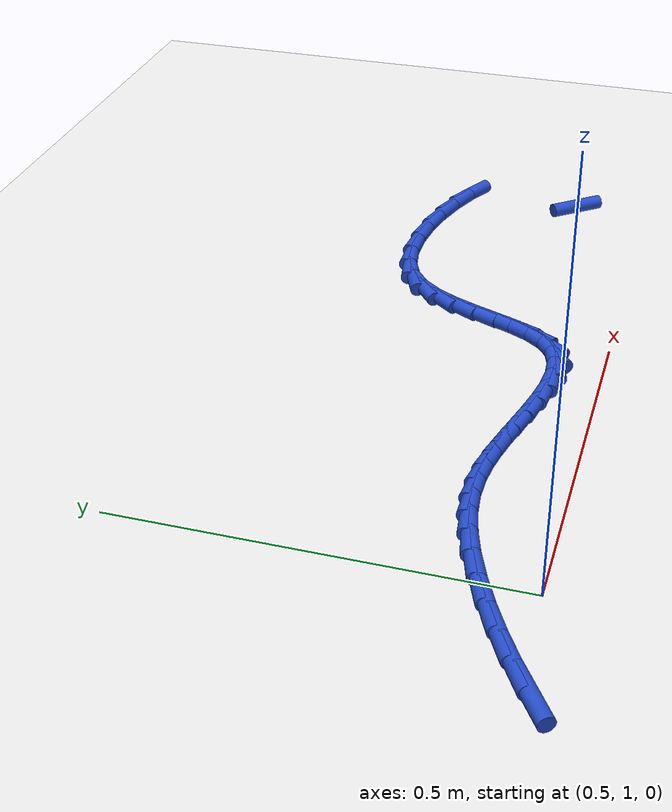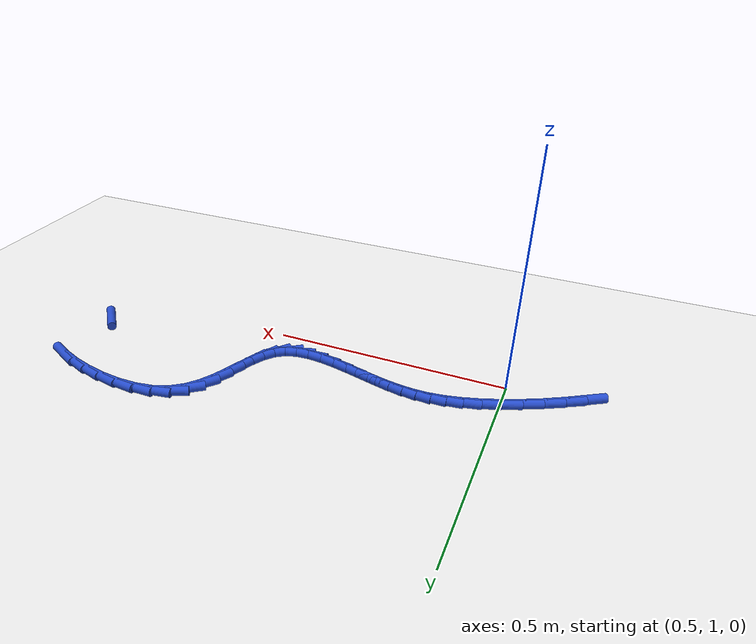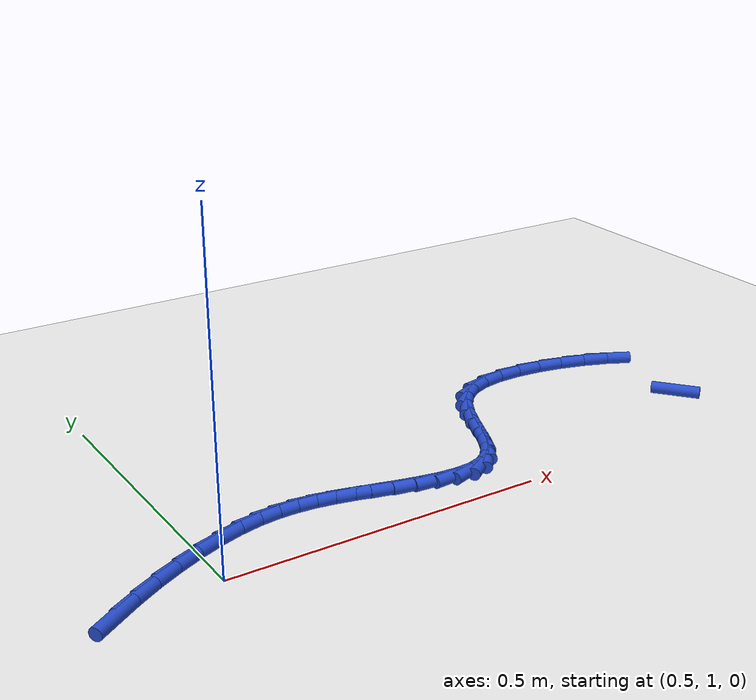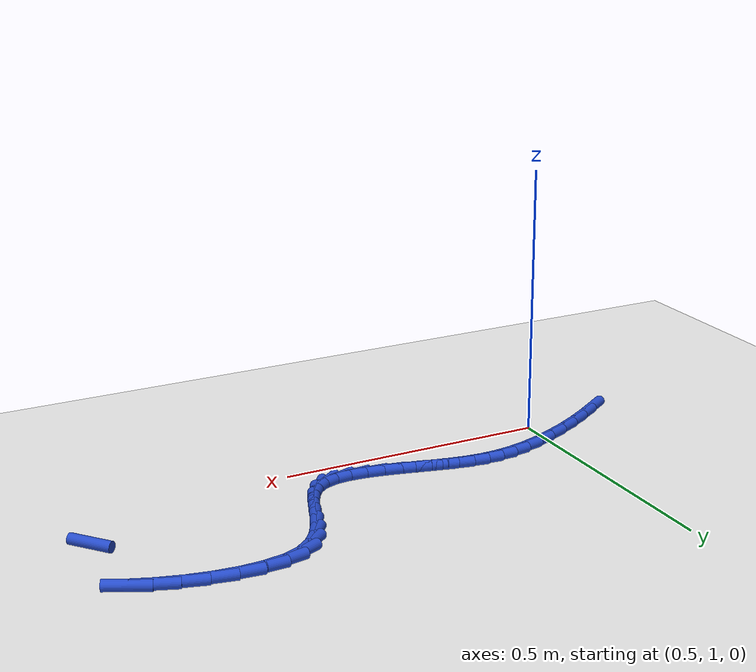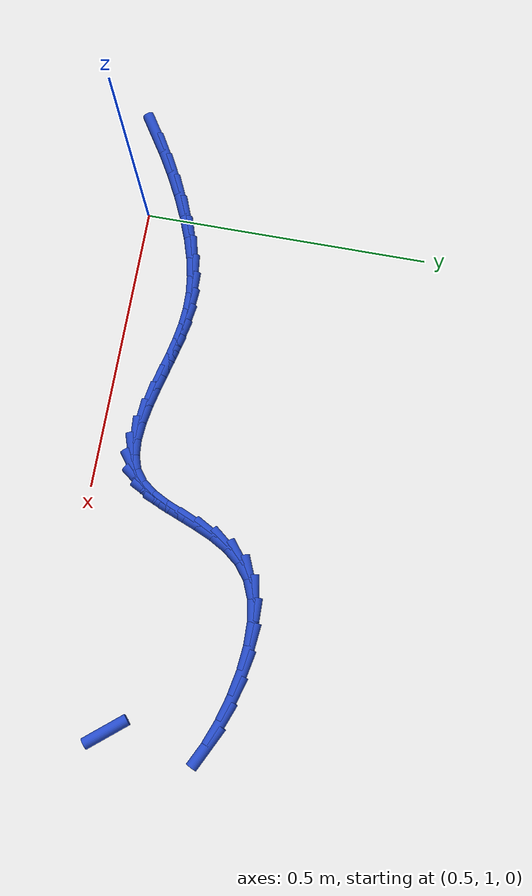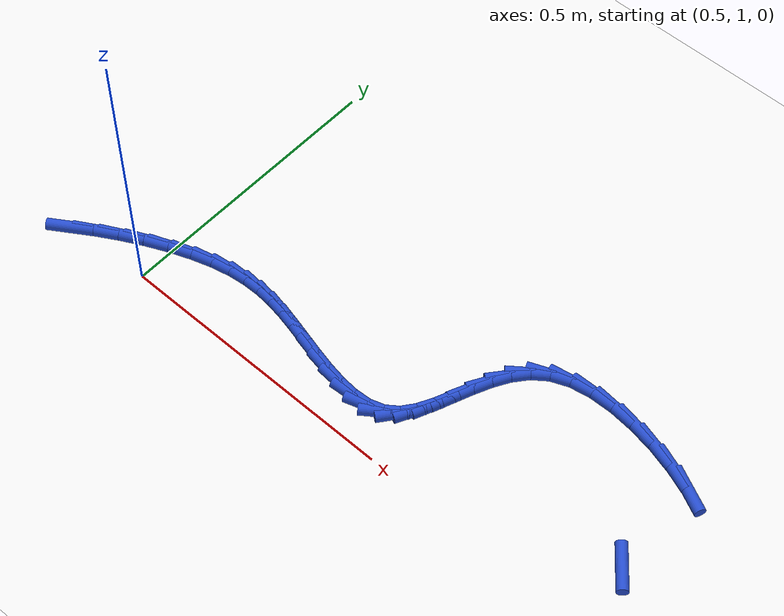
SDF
<sdf version="1.6">
 <world name="default">
  <model name="ground_plane">
   <static>1</static>
   <link name="link">
    <collision name="collision">
     <geometry><plane><normal>0 0 1</normal><size>100 100</size></plane></geometry>
     <surface><friction><ode><mu>100</mu><mu2>50</mu2></ode></friction></surface>
    </collision>
    <visual name="visual">
     <cast_shadows>0</cast_shadows>
     <geometry><plane><normal>0 0 1</normal><size>100 100</size></plane></geometry>
     <material>
      <script><uri>file://media/materials/scripts/gazebo.material</uri><name>Gazebo/WhiteGlow</name></script>
     </material>
    </visual>
   </link>
  </model>
  <model name="line">
   <link name="link_40">
    <pose>0.346780842815617 0.9847968200409205 0.01 0 1.57 0.5760384446696214</pose>
    <collision name="collision">
     <geometry><cylinder><radius>0.01</radius><length>0.08</length></cylinder></geometry>
    </collision>
    <visual name="visual">
     <material>
      <script><name>Gazebo/Blue</name><uri>file://media/materials/scripts/gazebo.material</uri></script>
     </material>
     <geometry><cylinder><radius>0.01</radius><length>0.08</length></cylinder></geometry>
    </visual>
   </link>
   <link name="link_41">
    <pose>0.3829566989174125 1.0082937997581067 0.01 0 1.57 0.529337563380191</pose>
    <collision name="collision">
     <geometry><cylinder><radius>0.01</radius><length>0.08</length></cylinder></geometry>
    </collision>
    <visual name="visual">
     <material>
      <script><name>Gazebo/Blue</name><uri>file://media/materials/scripts/gazebo.material</uri></script>
     </material>
     <geometry><cylinder><radius>0.01</radius><length>0.08</length></cylinder></geometry>
    </visual>
   </link>
   <link name="link_42">
    <pose>0.42037730424925923 1.0301858832220723 0.01 0 1.57 0.48162299784644824</pose>
    <collision name="collision">
     <geometry><cylinder><radius>0.01</radius><length>0.08</length></cylinder></geometry>
    </collision>
    <visual name="visual">
     <material>
      <script><name>Gazebo/Blue</name><uri>file://media/materials/scripts/gazebo.material</uri></script>
     </material>
     <geometry><cylinder><radius>0.01</radius><length>0.08</length></cylinder></geometry>
    </visual>
   </link>
   <link name="link_43">
    <pose>0.4583892657239844 1.0500538033799964 0.01 0 1.57 0.43043221737695614</pose>
    <collision name="collision">
     <geometry><cylinder><radius>0.01</radius><length>0.08</length></cylinder></geometry>
    </collision>
    <visual name="visual">
     <material>
      <script><name>Gazebo/Blue</name><uri>file://media/materials/scripts/gazebo.material</uri></script>
     </material>
     <geometry><cylinder><radius>0.01</radius><length>0.08</length></cylinder></geometry>
    </visual>
   </link>
   <link name="link_44">
    <pose>0.49633919025441575 1.0674782931790592 0.01 0 1.57 0.3727960911620906</pose>
    <collision name="collision">
     <geometry><cylinder><radius>0.01</radius><length>0.08</length></cylinder></geometry>
    </collision>
    <visual name="visual">
     <material>
      <script><name>Gazebo/Blue</name><uri>file://media/materials/scripts/gazebo.material</uri></script>
     </material>
     <geometry><cylinder><radius>0.01</radius><length>0.08</length></cylinder></geometry>
    </visual>
   </link>
   <link name="link_45">
    <pose>0.5335736847533803 1.0820400855664403 0.01 0 1.57 0.3047077780259162</pose>
    <collision name="collision">
     <geometry><cylinder><radius>0.01</radius><length>0.08</length></cylinder></geometry>
    </collision>
    <visual name="visual">
     <material>
      <script><name>Gazebo/Blue</name><uri>file://media/materials/scripts/gazebo.material</uri></script>
     </material>
     <geometry><cylinder><radius>0.01</radius><length>0.08</length></cylinder></geometry>
    </visual>
   </link>
   <link name="link_46">
    <pose>0.5694393561337056 1.0933199134893197 0.01 0 1.57 0.22032367388659238</pose>
    <collision name="collision">
     <geometry><cylinder><radius>0.01</radius><length>0.08</length></cylinder></geometry>
    </collision>
    <visual name="visual">
     <material>
      <script><name>Gazebo/Blue</name><uri>file://media/materials/scripts/gazebo.material</uri></script>
     </material>
     <geometry><cylinder><radius>0.01</radius><length>0.08</length></cylinder></geometry>
    </visual>
   </link>
   <link name="link_47">
    <pose>0.6032847010396489 1.1008998934302017 0.01 0 1.57 0.11801092920639973</pose>
    <collision name="collision">
     <geometry><cylinder><radius>0.01</radius><length>0.08</length></cylinder></geometry>
    </collision>
    <visual name="visual">
     <material>
      <script><name>Gazebo/Blue</name><uri>file://media/materials/scripts/gazebo.material</uri></script>
     </material>
     <geometry><cylinder><radius>0.01</radius><length>0.08</length></cylinder></geometry>
    </visual>
   </link>
   <link name="link_48">
    <pose>0.6348391668142684 1.1046410485673424 0.01 0 1.57 0.012693178703625338</pose>
    <collision name="collision">
     <geometry><cylinder><radius>0.01</radius><length>0.08</length></cylinder></geometry>
    </collision>
    <visual name="visual">
     <material>
      <script><name>Gazebo/Blue</name><uri>file://media/materials/scripts/gazebo.material</uri></script>
     </material>
     <geometry><cylinder><radius>0.01</radius><length>0.08</length></cylinder></geometry>
    </visual>
   </link>
   <link name="link_49">
    <pose>0.6646726885117425 1.1050197511282718 0.01 0 1.57 -0.08402460405793628</pose>
    <collision name="collision">
     <geometry><cylinder><radius>0.01</radius><length>0.08</length></cylinder></geometry>
    </collision>
    <visual name="visual">
     <material>
      <script><name>Gazebo/Blue</name><uri>file://media/materials/scripts/gazebo.material</uri></script>
     </material>
     <geometry><cylinder><radius>0.01</radius><length>0.08</length></cylinder></geometry>
    </visual>
   </link>
   <link name="link_50">
    <pose>0.6934674723057194 1.1025945707667442 0.01 0 1.57 -0.16277965578552236</pose>
    <collision name="collision">
     <geometry><cylinder><radius>0.01</radius><length>0.08</length></cylinder></geometry>
    </collision>
    <visual name="visual">
     <material>
      <script><name>Gazebo/Blue</name><uri>file://media/materials/scripts/gazebo.material</uri></script>
     </material>
     <geometry><cylinder><radius>0.01</radius><length>0.08</length></cylinder></geometry>
    </visual>
   </link>
   <link name="link_51">
    <pose>0.7219057243698467 1.0979240771365126 0.01 0 1.57 -0.21751751214565163</pose>
    <collision name="collision">
     <geometry><cylinder><radius>0.01</radius><length>0.08</length></cylinder></geometry>
    </collision>
    <visual name="visual">
     <material>
      <script><name>Gazebo/Blue</name><uri>file://media/materials/scripts/gazebo.material</uri></script>
     </material>
     <geometry><cylinder><radius>0.01</radius><length>0.08</length></cylinder></geometry>
    </visual>
   </link>
   <link name="link_52">
    <pose>0.750669650877773 1.0915668398913312 0.01 0 1.57 -0.24632048232726458</pose>
    <collision name="collision">
     <geometry><cylinder><radius>0.01</radius><length>0.08</length></cylinder></geometry>
    </collision>
    <visual name="visual">
     <material>
      <script><name>Gazebo/Blue</name><uri>file://media/materials/scripts/gazebo.material</uri></script>
     </material>
     <geometry><cylinder><radius>0.01</radius><length>0.08</length></cylinder></geometry>
    </visual>
   </link>
   <link name="link_53">
    <pose>0.7804414580031465 1.084081428684954 0.01 0 1.57 -0.25017010120863326</pose>
    <collision name="collision">
     <geometry><cylinder><radius>0.01</radius><length>0.08</length></cylinder></geometry>
    </collision>
    <visual name="visual">
     <material>
      <script><name>Gazebo/Blue</name><uri>file://media/materials/scripts/gazebo.material</uri></script>
     </material>
     <geometry><cylinder><radius>0.01</radius><length>0.08</length></cylinder></geometry>
    </visual>
   </link>
   <link name="link_54">
    <pose>0.8118053019014472 1.076067241411311 0.01 0 1.57 -0.22681612454320704</pose>
    <collision name="collision">
     <geometry><cylinder><radius>0.01</radius><length>0.08</length></cylinder></geometry>
    </collision>
    <visual name="visual">
     <material>
      <script><name>Gazebo/Blue</name><uri>file://media/materials/scripts/gazebo.material</uri></script>
     </material>
     <geometry><cylinder><radius>0.01</radius><length>0.08</length></cylinder></geometry>
    </visual>
   </link>
   <link name="link_55">
    <pose>0.8442519631030452 1.068578959945497 0.01 0 1.57 -0.1721664641101937</pose>
    <collision name="collision">
     <geometry><cylinder><radius>0.01</radius><length>0.08</length></cylinder></geometry>
    </collision>
    <visual name="visual">
     <material>
      <script><name>Gazebo/Blue</name><uri>file://media/materials/scripts/gazebo.material</uri></script>
     </material>
     <geometry><cylinder><radius>0.01</radius><length>0.08</length></cylinder></geometry>
    </visual>
   </link>
   <link name="link_56">
    <pose>0.8765882687766392 1.0629560658254866 0.01 0 1.57 -0.07764772849173787</pose>
    <collision name="collision">
     <geometry><cylinder><radius>0.01</radius><length>0.08</length></cylinder></geometry>
    </collision>
    <visual name="visual">
     <material>
      <script><name>Gazebo/Blue</name><uri>file://media/materials/scripts/gazebo.material</uri></script>
     </material>
     <geometry><cylinder><radius>0.01</radius><length>0.08</length></cylinder></geometry>
    </visual>
   </link>
   <link name="link_57">
    <pose>0.9076105729556858 1.0605424016254794 0.01 0 1.57 0.0749142357881108</pose>
    <collision name="collision">
     <geometry><cylinder><radius>0.01</radius><length>0.08</length></cylinder></geometry>
    </collision>
    <visual name="visual">
     <material>
      <script><name>Gazebo/Blue</name><uri>file://media/materials/scripts/gazebo.material</uri></script>
     </material>
     <geometry><cylinder><radius>0.01</radius><length>0.08</length></cylinder></geometry>
    </visual>
   </link>
   <link name="link_58">
    <pose>0.9361152296736415 1.0626818099196746 0.01 0 1.57 0.3135650039664543</pose>
    <collision name="collision">
     <geometry><cylinder><radius>0.01</radius><length>0.08</length></cylinder></geometry>
    </collision>
    <visual name="visual">
     <material>
      <script><name>Gazebo/Blue</name><uri>file://media/materials/scripts/gazebo.material</uri></script>
     </material>
     <geometry><cylinder><radius>0.01</radius><length>0.08</length></cylinder></geometry>
    </visual>
   </link>
   <link name="link_59">
    <pose>0.9608985929639625 1.0707181332822722 0.01 0 1.57 0.6416438851529567</pose>
    <collision name="collision">
     <geometry><cylinder><radius>0.01</radius><length>0.08</length></cylinder></geometry>
    </collision>
    <visual name="visual">
     <material>
      <script><name>Gazebo/Blue</name><uri>file://media/materials/scripts/gazebo.material</uri></script>
     </material>
     <geometry><cylinder><radius>0.01</radius><length>0.08</length></cylinder></geometry>
    </visual>
   </link>
   <link name="link_60">
    <pose>0.9809882982725167 1.0857271947333158 0.01 0 1.57 0.9226572575720584</pose>
    <collision name="collision">
     <geometry><cylinder><radius>0.01</radius><length>0.08</length></cylinder></geometry>
    </collision>
    <visual name="visual">
     <material>
      <script><name>Gazebo/Blue</name><uri>file://media/materials/scripts/gazebo.material</uri></script>
     </material>
     <geometry><cylinder><radius>0.01</radius><length>0.08</length></cylinder></geometry>
    </visual>
   </link>
   <link name="link_61">
    <pose>0.9970296177038007 1.1069102254200647 0.01 0 1.57 1.093272889969365</pose>
    <collision name="collision">
     <geometry><cylinder><radius>0.01</radius><length>0.08</length></cylinder></geometry>
    </collision>
    <visual name="visual">
     <material>
      <script><name>Gazebo/Blue</name><uri>file://media/materials/scripts/gazebo.material</uri></script>
     </material>
     <geometry><cylinder><radius>0.01</radius><length>0.08</length></cylinder></geometry>
    </visual>
   </link>
   <link name="link_62">
    <pose>1.0103584711677638 1.1326681019996925 0.01 0 1.57 1.1764855130083507</pose>
    <collision name="collision">
     <geometry><cylinder><radius>0.01</radius><length>0.08</length></cylinder></geometry>
    </collision>
    <visual name="visual">
     <material>
      <script><name>Gazebo/Blue</name><uri>file://media/materials/scripts/gazebo.material</uri></script>
     </material>
     <geometry><cylinder><radius>0.01</radius><length>0.08</length></cylinder></geometry>
    </visual>
   </link>
   <link name="link_63">
    <pose>1.0223133638495867 1.1613987051933528 0.01 0 1.57 1.1937614197917494</pose>
    <collision name="collision">
     <geometry><cylinder><radius>0.01</radius><length>0.08</length></cylinder></geometry>
    </collision>
    <visual name="visual">
     <material>
      <script><name>Gazebo/Blue</name><uri>file://media/materials/scripts/gazebo.material</uri></script>
     </material>
     <geometry><cylinder><radius>0.01</radius><length>0.08</length></cylinder></geometry>
    </visual>
   </link>
   <link name="link_64">
    <pose>1.0342328009344484 1.1914999157221984 0.01 0 1.57 1.1540528440105546</pose>
    <collision name="collision">
     <geometry><cylinder><radius>0.01</radius><length>0.08</length></cylinder></geometry>
    </collision>
    <visual name="visual">
     <material>
      <script><name>Gazebo/Blue</name><uri>file://media/materials/scripts/gazebo.material</uri></script>
     </material>
     <geometry><cylinder><radius>0.01</radius><length>0.08</length></cylinder></geometry>
    </visual>
   </link>
   <link name="link_65">
    <pose>1.0474552876075287 1.2213696143073822 0.01 0 1.57 1.055870221673675</pose>
    <collision name="collision">
     <geometry><cylinder><radius>0.01</radius><length>0.08</length></cylinder></geometry>
    </collision>
    <visual name="visual">
     <material>
      <script><name>Gazebo/Blue</name><uri>file://media/materials/scripts/gazebo.material</uri></script>
     </material>
     <geometry><cylinder><radius>0.01</radius><length>0.08</length></cylinder></geometry>
    </visual>
   </link>
   <link name="link_66">
    <pose>1.0633193290540086 1.2494056816700583 0.01 0 1.57 0.8920073400906505</pose>
    <collision name="collision">
     <geometry><cylinder><radius>0.01</radius><length>0.08</length></cylinder></geometry>
    </collision>
    <visual name="visual">
     <material>
      <script><name>Gazebo/Blue</name><uri>file://media/materials/scripts/gazebo.material</uri></script>
     </material>
     <geometry><cylinder><radius>0.01</radius><length>0.08</length></cylinder></geometry>
    </visual>
   </link>
   <link name="link_67">
    <pose>1.0831634304590663 1.2740059985313779 0.01 0 1.57 0.660832266614802</pose>
    <collision name="collision">
     <geometry><cylinder><radius>0.01</radius><length>0.08</length></cylinder></geometry>
    </collision>
    <visual name="visual">
     <material>
      <script><name>Gazebo/Blue</name><uri>file://media/materials/scripts/gazebo.material</uri></script>
     </material>
     <geometry><cylinder><radius>0.01</radius><length>0.08</length></cylinder></geometry>
    </visual>
   </link>
   <link name="link_68">
    <pose>1.1083260970078828 1.293568445612495 0.01 0 1.57 0.39247164846165133</pose>
    <collision name="collision">
     <geometry><cylinder><radius>0.01</radius><length>0.08</length></cylinder></geometry>
    </collision>
    <visual name="visual">
     <material>
      <script><name>Gazebo/Blue</name><uri>file://media/materials/scripts/gazebo.material</uri></script>
     </material>
     <geometry><cylinder><radius>0.01</radius><length>0.08</length></cylinder></geometry>
    </visual>
   </link>
   <link name="link_69">
    <pose>1.1399321944086525 1.3066516990123191 0.01 0 1.57 0.17472026936080096</pose>
    <collision name="collision">
     <geometry><cylinder><radius>0.01</radius><length>0.08</length></cylinder></geometry>
    </collision>
    <visual name="visual">
     <material>
      <script><name>Gazebo/Blue</name><uri>file://media/materials/scripts/gazebo.material</uri></script>
     </material>
     <geometry><cylinder><radius>0.01</radius><length>0.08</length></cylinder></geometry>
    </visual>
   </link>
   <link name="link_70">
    <pose>1.1772206715527893 1.3132338668151393 0.01 0 1.57 0.019367593695413465</pose>
    <collision name="collision">
     <geometry><cylinder><radius>0.01</radius><length>0.08</length></cylinder></geometry>
    </collision>
    <visual name="visual">
     <material>
      <script><name>Gazebo/Blue</name><uri>file://media/materials/scripts/gazebo.material</uri></script>
     </material>
     <geometry><cylinder><radius>0.01</radius><length>0.08</length></cylinder></geometry>
    </visual>
   </link>
   <link name="link_71">
    <pose>1.2184480986152528 1.3140324427236783 0.01 0 1.57 -0.09783711238786623</pose>
    <collision name="collision">
     <geometry><cylinder><radius>0.01</radius><length>0.08</length></cylinder></geometry>
    </collision>
    <visual name="visual">
     <material>
      <script><name>Gazebo/Blue</name><uri>file://media/materials/scripts/gazebo.material</uri></script>
     </material>
     <geometry><cylinder><radius>0.01</radius><length>0.08</length></cylinder></geometry>
    </visual>
   </link>
   <link name="link_72">
    <pose>1.2618625826012788 1.309771290230513 0.01 0 1.57 -0.1936010689508289</pose>
    <collision name="collision">
     <geometry><cylinder><radius>0.01</radius><length>0.08</length></cylinder></geometry>
    </collision>
    <visual name="visual">
     <material>
      <script><name>Gazebo/Blue</name><uri>file://media/materials/scripts/gazebo.material</uri></script>
     </material>
     <geometry><cylinder><radius>0.01</radius><length>0.08</length></cylinder></geometry>
    </visual>
   </link>
   <link name="link_73">
    <pose>1.3057122305161022 1.3011742728282194 0.01 0 1.57 -0.2795329221440047</pose>
    <collision name="collision">
     <geometry><cylinder><radius>0.01</radius><length>0.08</length></cylinder></geometry>
    </collision>
    <visual name="visual">
     <material>
      <script><name>Gazebo/Blue</name><uri>file://media/materials/scripts/gazebo.material</uri></script>
     </material>
     <geometry><cylinder><radius>0.01</radius><length>0.08</length></cylinder></geometry>
    </visual>
   </link>
   <link name="link_74">
    <pose>1.348245149364959 1.2889652540093741 0.01 0 1.57 -0.3653753525605979</pose>
    <collision name="collision">
     <geometry><cylinder><radius>0.01</radius><length>0.08</length></cylinder></geometry>
    </collision>
    <visual name="visual">
     <material>
      <script><name>Gazebo/Blue</name><uri>file://media/materials/scripts/gazebo.material</uri></script>
     </material>
     <geometry><cylinder><radius>0.01</radius><length>0.08</length></cylinder></geometry>
    </visual>
   </link>
   <link name="link_75">
    <pose>1.3877094461530841 1.273868097266554 0.01 0 1.57 -0.4622504892997835</pose>
    <collision name="collision">
     <geometry><cylinder><radius>0.01</radius><length>0.08</length></cylinder></geometry>
    </collision>
    <visual name="visual">
     <material>
      <script><name>Gazebo/Blue</name><uri>file://media/materials/scripts/gazebo.material</uri></script>
     </material>
     <geometry><cylinder><radius>0.01</radius><length>0.08</length></cylinder></geometry>
    </visual>
   </link>
   <link name="link_85">
    <pose>1.3923968487092047 1.1082605534893917 0.01 0 1.57 -0.888767923315463</pose>
    <collision name="collision">
     <geometry><cylinder><radius>0.01</radius><length>0.08</length></cylinder></geometry>
    </collision>
    <visual name="visual">
     <material>
      <script><name>Gazebo/Blue</name><uri>file://media/materials/scripts/gazebo.material</uri></script>
     </material>
     <geometry><cylinder><radius>0.01</radius><length>0.08</length></cylinder></geometry>
    </visual>
   </link>
  </model>
 </world>
</sdf>
